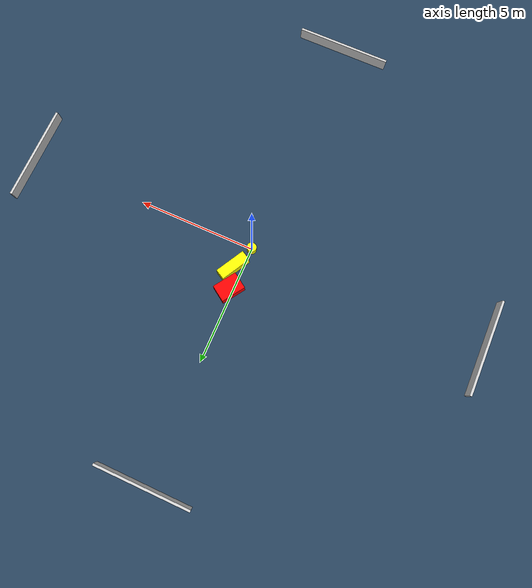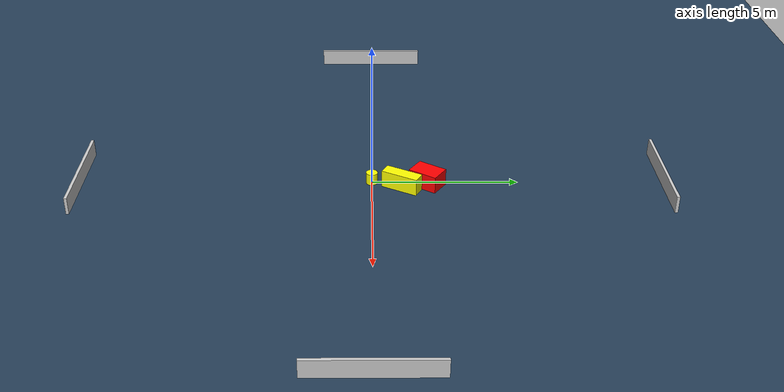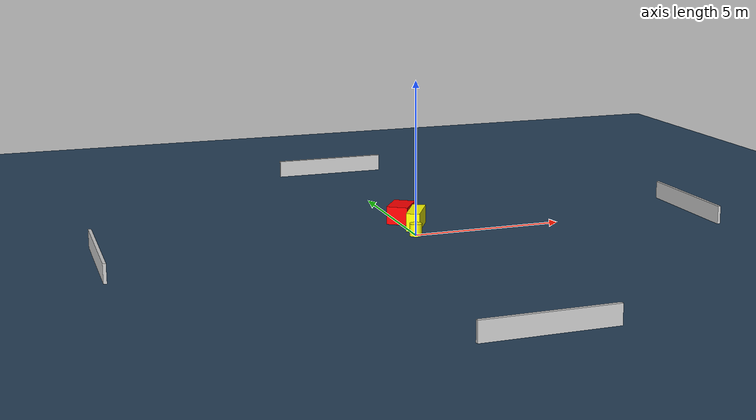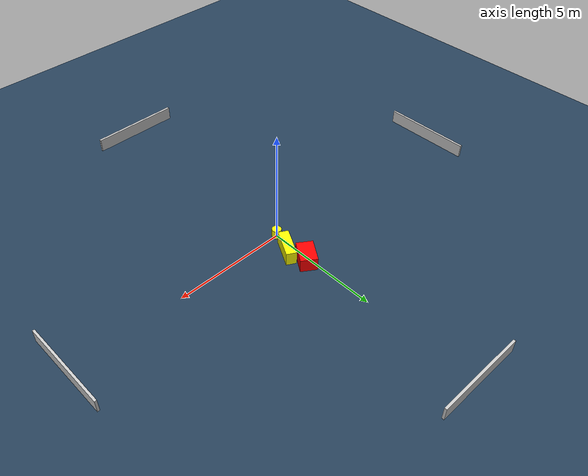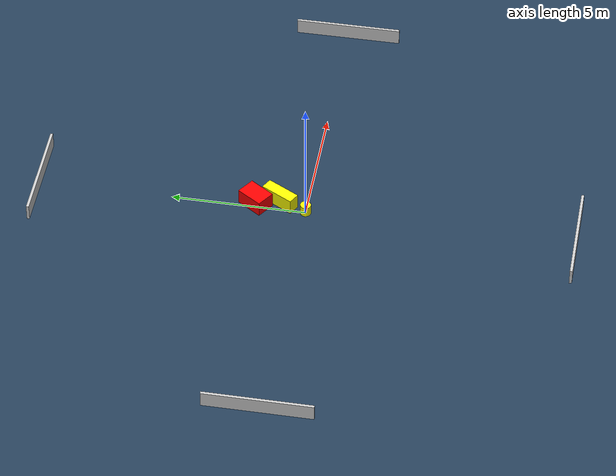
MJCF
<?xml version="1.0" ?>
<mujoco model="generated_environment">
  <option timestep="0.01" integrator="RK4" cone="elliptic"/>
  <default>
    <geom density="1"/>
  </default>
  <asset>
    <texture builtin="gradient" height="3072" name="skybox" rgb1="0.3 0.5 0.7" rgb2="0 0 0" type="skybox" width="512"/>
    <texture builtin="checker" height="300" name="groundplane" rgb1="0.2 0.3 0.4" rgb2="0.1 0.2 0.3" type="2d" width="300"/>
    <material name="groundplane" reflectance="0.2" texrepeat="5 5" texture="groundplane"/>
  </asset>
  <worldbody>
    <light dir="0 0 -1" directional="true" pos="0 0 1.5"/>
    <geom condim="3" friction="0.5 0.005 0.001" material="groundplane" name="floor" pos="0 0 0" size="0 0 0.05" type="plane"/>
    <body name="walls">
      <geom name="wall_1" condim="4" pos="-10.0 0.0 0.3" rgba="0.800000011920929 0.800000011920929 0.800000011920929 1.0" size="0.05 2.0 0.3" type="box"/>
      <geom name="wall_2" condim="4" pos="10.0 0.0 0.3" rgba="0.800000011920929 0.800000011920929 0.800000011920929 1.0" size="0.05 2.0 0.3" type="box"/>
      <geom name="wall_3" condim="4" pos="0.0 -10.0 0.3" rgba="0.800000011920929 0.800000011920929 0.800000011920929 1.0" size="2.0 0.05 0.3" type="box"/>
      <geom name="wall_4" condim="4" pos="0.0 10.0 0.3" rgba="0.800000011920929 0.800000011920929 0.800000011920929 1.0" size="2.0 0.05 0.3" type="box"/>
    </body>
    <body name="robot">
      <joint name="joint_x" type="slide" pos="0 0 0" axis="1 0 0"/>
      <joint name="joint_y" type="slide" pos="0 0 0" axis="0 1 0"/>
      <geom name="robot" type="cylinder" pos="0.0 0.0 0.2" size="0.2 0.2 0.0" mass="5.0" friction="1.0 0.005 0.0001" condim="4" rgba="1.0 1.0 0.0 1.0"/>
    </body>
    <body name="obstacle_1_movable">
      <geom name="obstacle_1_movable" condim="4" pos="0.3745512730821673 1.0159131132687782 0.3" euler="0 0 330.9851397427273" friction="0.0 0.005 0.001" rgba="1.0 1.0 0.0 1.0" size="0.22172024426438267 0.6564384618533512 0.3" type="box" mass="0.1"/>
      <joint type="free"/>
    </body>
    <body name="obstacle_2_static">
      <geom name="obstacle_2_static" condim="4" pos="0.15220167996248984 1.8950209051357467 0.3" euler="0 0 146.06468500543173" friction="0.0 0.005 0.001" rgba="1.0 0.0 0.0 1.0" size="0.3587182096291177 0.5202398489085405 0.3" type="box"/>
    </body>
  </worldbody>
  <actuator>
    <motor name="actuator_x" joint="joint_x" gear="1" ctrlrange="-1 1"/>
    <motor name="actuator_y" joint="joint_y" gear="1" ctrlrange="-1 1"/>
  </actuator>
</mujoco>
